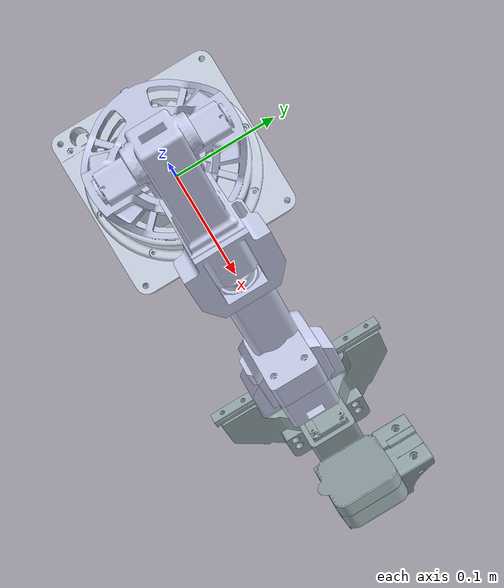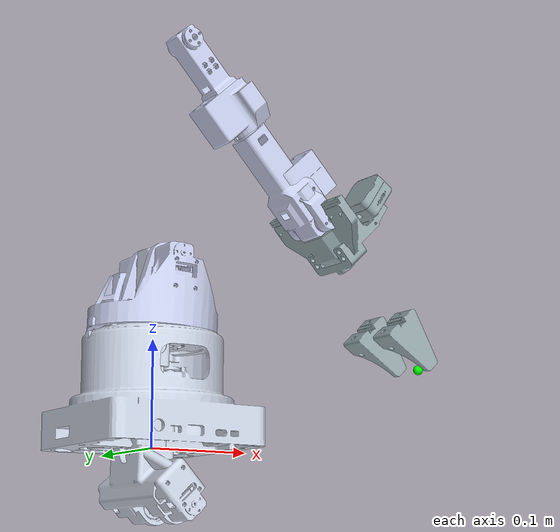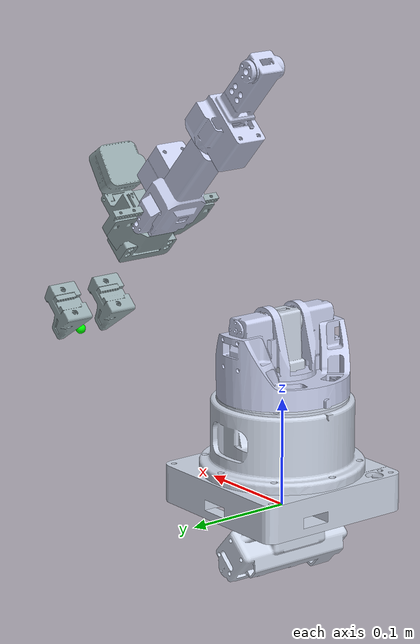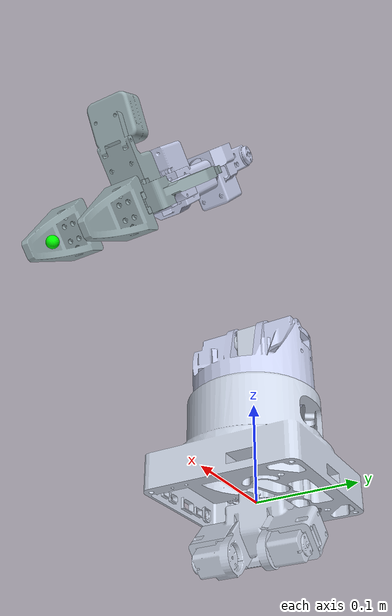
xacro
<?xml version="1.0"?>
<robot xmlns:xacro="http://www.ros.org/wiki/xacro" name="Alicia_D_v5_6_gripper_50mm">
  <xacro:arg
    name="initial_positions_file"
    default="$(find moveit_config)/config/initial_positions.yaml" />
  <xacro:arg name="use_fake_hardware" default="true" />
  <xacro:arg name="hw_port" default="" />
  <xacro:arg name="hw_gripper_type" default="50mm" />
  <xacro:arg name="hw_default_speed_deg_s" default="5.0" />

  <xacro:include
    filename="$(find alicia_d_descriptions)/urdf/Alicia_D_v5_6/Alicia_D_v5_6_gripper_50mm.urdf" />
  <xacro:include filename="$(find my_robot_bringup)/config/alicia_d.ros2_control.xacro" />

  <xacro:alicia_d_ros2_control
    name="AliciaDSystem"
    initial_positions_file="$(arg initial_positions_file)"
    use_fake_hardware="$(arg use_fake_hardware)"
    hw_port="$(arg hw_port)"
    hw_gripper_type="$(arg hw_gripper_type)"
    hw_default_speed_deg_s="$(arg hw_default_speed_deg_s)" />
</robot>

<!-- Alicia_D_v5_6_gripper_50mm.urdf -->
<robot
  name="Alicia_D_v5_6_gripper_50mm">
 <mujoco>
    <compiler meshdir="../../meshes/Alicia_D_v5_6/gripper_50mm/" discardvisual="false" />
    <contact>
      <exclude body1="base_link" body2="Link1"/>
      <exclude body1="Link1" body2="Link2"/>
      <exclude body1="Link2" body2="Link3"/>
      <exclude body1="Link3" body2="Link4"/>
      <exclude body1="Link4" body2="Link5"/>
      <exclude body1="Link5" body2="Link6"/>
      <exclude body1="Link6" body2="Link7_100mm"/>
      <exclude body1="Link7_100mm" body2="Link8_100mm"/>
    </contact>
  </mujoco>
  <link name="base_link"/>
  <link
    name="base_link_model">
    <inertial>
      <origin
        xyz="0.000826234790037182 0.00797844273246942 0.0457675129432197"
        rpy="0 0 0" />
      <mass
        value="0.733961424639881" />
      <inertia
        ixx="0.00138410344771636"
        ixy="5.6720111040394E-05"
        ixz="5.14360164234906E-07"
        iyy="0.00173617223701436"
        iyz="-1.48652204589359E-05"
        izz="0.00274667683203449" />
    </inertial>
    <visual>
      <origin
        xyz="0 0 0"
        rpy="0 0 0" />
      <geometry>
        <mesh
          filename="package://alicia_d_descriptions/meshes/Alicia_D_v5_6/gripper_50mm/base_link.STL" />
      </geometry>
      <material
        name="">
        <color
          rgba="0.807843137254902 0.843137254901961 0.905882352941176 1" />
      </material>
    </visual>
    <collision>
      <origin
        xyz="0 0 0"
        rpy="0 0 0" />
      <geometry>
        <mesh
          filename="package://alicia_d_descriptions/meshes/Alicia_D_v5_6/gripper_50mm/base_link.STL" />
      </geometry>
    </collision>
  </link>
  <link
    name="Link1">
    <inertial>
      <origin
        xyz="-0.000109852378263583 -1.29044880303677E-05 0.00303812928582989"
        rpy="0 0 0" />
      <mass
        value="0.195233452997321" />
      <inertia
        ixx="0.000258425300590112"
        ixy="8.35832501961194E-07"
        ixz="2.55108522952061E-06"
        iyy="0.000149307709386745"
        iyz="-1.11115243634271E-06"
        izz="0.000339717098519443" />
    </inertial>
    <visual>
      <origin
        xyz="0 0 0"
        rpy="0 0 0" />
      <geometry>
        <mesh
          filename="package://alicia_d_descriptions/meshes/Alicia_D_v5_6/gripper_50mm/Link1.STL" />
      </geometry>
      <material
        name="">
        <color
          rgba="0.796078431372549 0.823529411764706 0.937254901960784 1" />
      </material>
    </visual>
    <collision>
      <origin
        xyz="0 0 0"
        rpy="0 0 0" />
      <geometry>
        <mesh
          filename="package://alicia_d_descriptions/meshes/Alicia_D_v5_6/gripper_50mm/Link1.STL" />
      </geometry>
    </collision>
  </link>
  <joint name="base_link_to_model" type="fixed">
    <parent link="base_link"/>
    <child link="base_link_model"/>
    <origin xyz="0 0 0" rpy="0 0 3.141592653589793"/>
  </joint>
  <joint
    name="Joint1"
    type="revolute">
    <origin
      xyz="0 0 0.1295"
      rpy="0 -0.0397818431857344 0" />
    <parent
      link="base_link_model" />
    <child
      link="Link1" />
    <axis
      xyz="-0.0397713509246861 0 0.999208806829496" />
    <limit
      lower="-2.749"
      upper="2.749"
      effort="5"
      velocity="12" />
  </joint>
  <link
    name="Link2">
    <inertial>
      <origin
        xyz="0.150588696308502 0.0010078295353837 0.000567596625482863"
        rpy="0 0 0" />
      <mass
        value="0.207033689183231" />
      <inertia
        ixx="0.000128135505496396"
        ixy="1.19129901688543E-07"
        ixz="1.66696350372182E-06"
        iyy="0.000205708394863872"
        iyz="-3.50023649531627E-07"
        izz="0.000122721343682842" />
    </inertial>
    <visual>
      <origin
        xyz="0 0 0"
        rpy="0 0 0" />
      <geometry>
        <mesh
          filename="package://alicia_d_descriptions/meshes/Alicia_D_v5_6/gripper_50mm/Link2.STL" />
      </geometry>
      <material
        name="">
        <color
          rgba="0.807843137254902 0.843137254901961 0.905882352941176 1" />
      </material>
    </visual>
    <collision>
      <origin
        xyz="0 0 0"
        rpy="0 0 0" />
      <geometry>
        <mesh
          filename="package://alicia_d_descriptions/meshes/Alicia_D_v5_6/gripper_50mm/Link2.STL" />
      </geometry>
    </collision>
  </link>
  <joint
    name="Joint2"
    type="revolute">
    <origin
      xyz="0.00170499781414124 0 0.0428360815487805"
      rpy="1.5707963267949 -1.5707963267949 0" />
    <parent
      link="Link1" />
    <child
      link="Link2" />
    <axis
      xyz="0 0 -1" />
    <limit
      lower="-1.57"
      upper="1.57"
      effort="5"
      velocity="12" />
  </joint>
  <link
    name="Link3">
    <inertial>
      <origin
        xyz="-0.00248143573134119 -0.0557863205548 -0.000269721208568205"
        rpy="0 0 0" />
      <mass
        value="0.084557560592733" />
      <inertia
        ixx="7.61918157616324E-05"
        ixy="-2.26498941784551E-06"
        ixz="-3.82300322530562E-07"
        iyy="2.87941475472316E-05"
        iyz="-5.38445212964491E-06"
        izz="8.0437047111115E-05" />
    </inertial>
    <visual>
      <origin
        xyz="0 0 0"
        rpy="0 0 0" />
      <geometry>
        <mesh
          filename="package://alicia_d_descriptions/meshes/Alicia_D_v5_6/gripper_50mm/Link3.STL" />
      </geometry>
      <material
        name="">
        <color
          rgba="0.792156862745098 0.819607843137255 0.933333333333333 1" />
      </material>
    </visual>
    <collision>
      <origin
        xyz="0 0 0"
        rpy="0 0 0" />
      <geometry>
        <mesh
          filename="package://alicia_d_descriptions/meshes/Alicia_D_v5_6/gripper_50mm/Link3.STL" />
      </geometry>
    </collision>
  </link>
  <joint
    name="Joint3"
    type="revolute">
    <origin
      xyz="0.223671302741224 0.0226916129580064 -4.99999999962493E-05"
      rpy="0 0 -2.35619449019234" />
    <parent
      link="Link2" />
    <child
      link="Link3" />
    <axis
      xyz="0 0 -1" />
    <limit
      lower="-0.78"
      upper="3.14159"
      effort="5"
      velocity="12" />
  </joint>
  <link
    name="Link4">
    <inertial>
      <origin
        xyz="0.000298365042559201 -0.000601368899126017 0.0659740387706658"
        rpy="0 0 0" />
      <mass
        value="0.0653695946194211" />
      <inertia
        ixx="7.03004180367636E-05"
        ixy="-9.68420336245233E-09"
        ixz="-7.50131050028475E-07"
        iyy="6.87470289266554E-05"
        iyz="4.45270635042395E-08"
        izz="1.68226186322302E-05" />
    </inertial>
    <visual>
      <origin
        xyz="0 0 0"
        rpy="0 0 0" />
      <geometry>
        <mesh
          filename="package://alicia_d_descriptions/meshes/Alicia_D_v5_6/gripper_50mm/Link4.STL" />
      </geometry>
      <material
        name="">
        <color
          rgba="0.792156862745098 0.819607843137255 0.933333333333333 1" />
      </material>
    </visual>
    <collision>
      <origin
        xyz="0 0 0"
        rpy="0 0 0" />
      <geometry>
        <mesh
          filename="package://alicia_d_descriptions/meshes/Alicia_D_v5_6/gripper_50mm/Link4.STL" />
      </geometry>
    </collision>
  </link>
  <joint
    name="Joint4"
    type="revolute">
    <origin
      xyz="0.00211000000000178 -0.0990000000000033 -0.0002000000000025"
      rpy="1.5707963267949 0 0" />
    <parent
      link="Link3" />
    <child
      link="Link4" />
    <axis
      xyz="0 0 -1" />
    <limit
      lower="-2.7925"
      upper="2.7925"
      effort="5"
      velocity="12" />
  </joint>
  <link
    name="Link5">
    <inertial>
      <origin
        xyz="-0.0113684234454137 0.0308687470677896 -0.000870449984786824"
        rpy="0 0 0" />
      <mass
        value="0.0507639007674435" />
      <inertia
        ixx="1.87701011536219E-05"
        ixy="2.01098611808329E-06"
        ixz="-5.15226393569299E-08"
        iyy="2.51021032905345E-05"
        iyz="-4.22413286193577E-08"
        izz="1.72571705255778E-05" />
    </inertial>
    <visual>
      <origin
        xyz="0 0 0"
        rpy="0 0 0" />
      <geometry>
        <mesh
          filename="package://alicia_d_descriptions/meshes/Alicia_D_v5_6/gripper_50mm/Link5.STL" />
      </geometry>
      <material
        name="">
        <color
          rgba="0.792156862745098 0.819607843137255 0.933333333333333 1" />
      </material>
    </visual>
    <collision>
      <origin
        xyz="0 0 0"
        rpy="0 0 0" />
      <geometry>
        <mesh
          filename="package://alicia_d_descriptions/meshes/Alicia_D_v5_6/gripper_50mm/Link5.STL" />
      </geometry>
    </collision>
  </link>
  <joint
    name="Joint5"
    type="revolute">
    <origin
      xyz="0 -0.000500000000001193 0.12235"
      rpy="1.5707963267949 0 0" />
    <parent
      link="Link4" />
    <child
      link="Link5" />
    <axis
      xyz="0 0 1" />
    <limit
      lower="-1.57"
      upper="1.57"
      effort="5"
      velocity="12" />
  </joint>
  <link
    name="Link6">
    <inertial>
      <origin
        xyz="-0.0274897798775847 -1.78822342322466E-05 0.0342551058654859"
        rpy="0 0 0" />
      <mass
        value="0.130364885866405" />
      <inertia
        ixx="7.59035802249734E-05"
        ixy="1.14541046833504E-08"
        ixz="-3.5807801958214E-06"
        iyy="3.5317537672941E-05"
        iyz="2.09250419672991E-08"
        izz="8.31975996709305E-05" />
    </inertial>
    <visual>
      <origin
        xyz="0 0 0"
        rpy="0 0 0" />
      <geometry>
        <mesh
          filename="package://alicia_d_descriptions/meshes/Alicia_D_v5_6/gripper_50mm/Link6.STL" />
      </geometry>
      <material
        name="">
        <color
          rgba="0.592156862745098 0.666666666666667 0.682352941176471 1" />
      </material>
    </visual>
    <collision>
      <origin
        xyz="0 0 0"
        rpy="0 0 0" />
      <geometry>
        <mesh
          filename="package://alicia_d_descriptions/meshes/Alicia_D_v5_6/gripper_50mm/Link6.STL" />
      </geometry>
    </collision>
  </link>
  <joint
    name="Joint6"
    type="revolute">
    <origin
      xyz="-0.00384999999999935 0.0574999999999998 -0.00100000000000219"
      rpy="-1.5707963267949 0 0" />
    <parent
      link="Link5" />
    <child
      link="Link6" />
    <axis
      xyz="0 0 -1" />
    <limit
      lower="-3.14"
      upper="3.14"
      effort="5"
      velocity="12" />
  </joint>
  <link
    name="left_gripper">
    <inertial>
      <origin
        xyz="-2.93287185648694E-08 -0.0434087598758469 0.0106558526470594"
        rpy="0 0 0" />
      <mass
        value="0.0256461113672271" />
      <inertia
        ixx="6.4683029449683E-06"
        ixy="2.40351488989113E-11"
        ixz="4.69831537464671E-12"
        iyy="5.13428726038217E-06"
        iyz="1.26432034940425E-06"
        izz="8.03606327071927E-06" />
    </inertial>
    <visual>
      <origin
        xyz="0 0 0"
        rpy="0 0 0" />
      <geometry>
        <mesh
          filename="package://alicia_d_descriptions/meshes/Alicia_D_v5_6/gripper_50mm/left_gripper.STL" />
      </geometry>
      <material
        name="">
        <color
          rgba="0.592156862745098 0.666666666666667 0.682352941176471 1" />
      </material>
    </visual>
    <collision>
      <origin
        xyz="0 0 0"
        rpy="0 0 0" />
      <geometry>
        <mesh
          filename="package://alicia_d_descriptions/meshes/Alicia_D_v5_6/gripper_50mm/left_gripper.STL" />
      </geometry>
    </collision>
  </link>
  <joint
    name="Gripper"
    type="prismatic">
    <origin
      xyz="0.0002 -0.0255 0.13098"
      rpy="1.5708 0 0" />
    <parent
      link="Link6" />
    <child
      link="left_gripper" />
    <axis
      xyz="0 0 -1" />
    <limit
      lower="0"
      upper="0.025"
      effort="5"
      velocity="12" />

  </joint>
  <link
    name="right_gripper">
    <inertial>
      <origin
        xyz="3.00579235945619E-08 0.0434087583688981 0.0106558526582326"
        rpy="0 0 0" />
      <mass
        value="0.0256461131643356" />
      <inertia
        ixx="6.4683036486599E-06"
        ixy="2.38640204729555E-11"
        ixz="-4.5715533055E-12"
        iyy="5.13428762370587E-06"
        iyz="-1.2643206279872E-06"
        izz="8.03606376010852E-06" />
    </inertial>
    <visual>
      <origin
        xyz="0 0 0"
        rpy="0 0 0" />
      <geometry>
        <mesh
          filename="package://alicia_d_descriptions/meshes/Alicia_D_v5_6/gripper_50mm/right_gripper.STL" />
      </geometry>
      <material
        name="">
        <color
          rgba="0.592156862745098 0.666666666666667 0.682352941176471 1" />
      </material>
    </visual>
    <collision>
      <origin
        xyz="0 0 0"
        rpy="0 0 0" />
      <geometry>
        <mesh
          filename="package://alicia_d_descriptions/meshes/Alicia_D_v5_6/gripper_50mm/right_gripper.STL" />
      </geometry>
    </collision>
  </link>
  <joint
    name="right_finger"
    type="prismatic">
    <origin
      xyz="0.0002 0.0255 0.13098"
      rpy="-1.5708 0 0" />
    <parent
      link="Link6" />
    <child
      link="right_gripper" />
    <axis
      xyz="0 0 1" />
    <limit
      lower="-0.025"
      upper="0"
      effort="5"
      velocity="12" />
    <mimic joint="Gripper" multiplier="-1" offset="0"/>
  </joint>
  <link
    name="gripper_center">

    <visual>
      <origin
        xyz="0 0 0"
        rpy="0 0 0" />
      <geometry>
        <sphere radius="0.005" />
      </geometry>
      <material
        name="green_virtual_sphere_material">
        <color
          rgba="0 1 0 1" />
      </material>
    </visual>
  </link>

  <joint
    name="finger"
    type="fixed">
    <origin
      xyz="0.0002 0 0.13098"
      rpy="0 0 0" />
    <parent
      link="Link6" />
    <child
      link="gripper_center" />
    <axis
      xyz="0 0 0" />
  </joint>
</robot>
